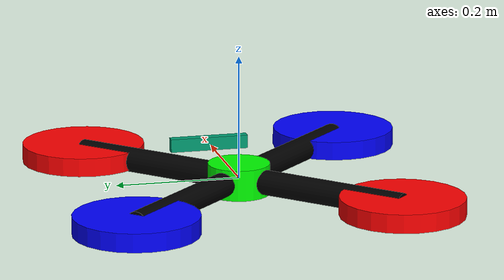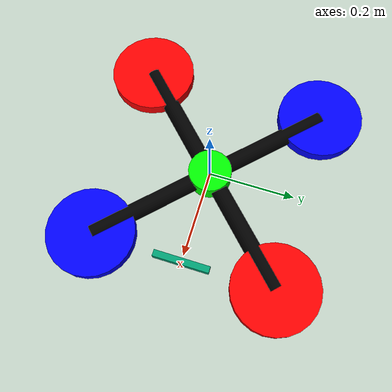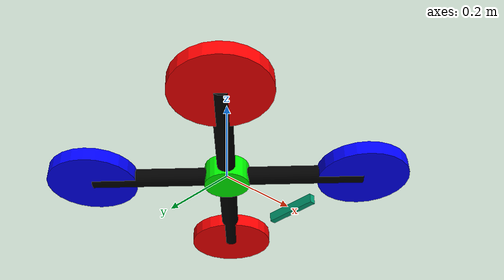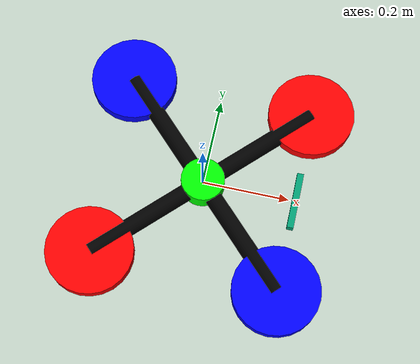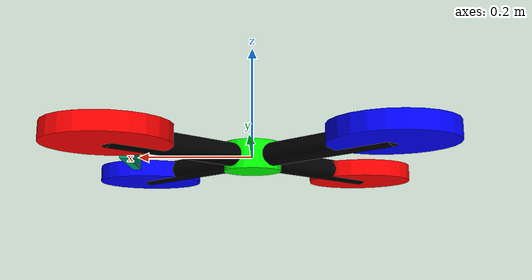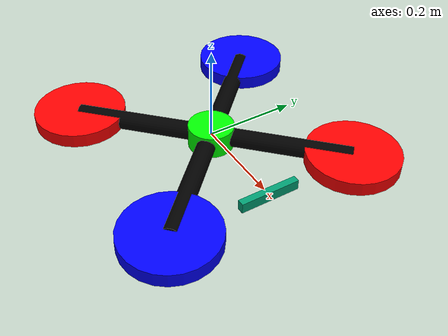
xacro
<?xml version="1.0"?>
<robot name="simple_quad" xmlns:xacro="http://ros.org/wiki/xacro">

  <xacro:property name="namespace"  value="simple_quad"/>

  <!-- Define robot constants -->
  <xacro:property name="arm_length"  value="0.30"/>
  <xacro:property name="arm_radius"  value="0.02"/>
  <xacro:property name="prop_radius" value="0.10"/>
  <xacro:property name="base_radius" value="0.05"/>
  <xacro:property name="base_height" value="0.05"/>

  <!-- Define intertial property macros  -->
  <xacro:macro name="box_inertia" params="m w h d">
    <inertial>
      <origin xyz="0 0 0" rpy="${pi/2} 0 ${pi/2}"/>
      <mass value="${m}"/>
      <inertia ixx="${(m/12) * (h*h + d*d)}" ixy="0.0" ixz="0.0" iyy="${(m/12) * (w*w + d*d)}" iyz="0.0" izz="${(m/12) * (w*w + h*h)}"/>
    </inertial>
  </xacro:macro>

  <xacro:macro name="cylinder_inertia" params="m r h">
    <inertial>
      <origin xyz="0 0 0" rpy="${pi/2} 0 0" />
      <mass value="${m}"/>
      <inertia ixx="${(m/12) * (3*r*r + h*h)}" ixy = "0" ixz = "0" iyy="${(m/12) * (3*r*r + h*h)}" iyz = "0" izz="${(m/2) * (r*r)}"/>
    </inertial>
  </xacro:macro>

  <xacro:macro name="sphere_inertia" params="m r">
    <inertial>
      <mass value="${m}"/>
      <inertia ixx="${(2/5) * m * (r*r)}" ixy="0.0" ixz="0.0" iyy="${(2/5) * m * (r*r)}" iyz="0.0" izz="${(2/5) * m * (r*r)}"/>
    </inertial>
  </xacro:macro>

  <!-- Robot Base -->
  <link name="base_link">
      <visual>
        <geometry>
          <cylinder radius="${base_radius}" length="${base_height}"/>
        </geometry>
        <material name="base">
          <color rgba="0 1.0 0.0 1"/>
        </material>
      </visual>

      <collision>
        <origin xyz="0 0 0" rpy="0 0 0"/>
        <geometry>
          <cylinder radius="${base_radius}" length="${base_height}"/>
        </geometry>
      </collision>

      <xacro:cylinder_inertia m="0.1" r="${base_radius}" h="${base_height}"/>
  </link>

  <!-- gravity (added later, not in original model) -->
  <gazebo reference="base_link">
    <gravity>true</gravity>
  </gazebo>

  <!-- Arms -->
  <xacro:macro name="arm" params="prefix color arm_angle">

  <joint name="${prefix}_joint" type="fixed">
    <parent link="base_link"/>
    <child link="${prefix}_link"/>
    <origin xyz="0.0 0.0 0.0" rpy="0 0 ${arm_angle+pi/4}"/>
  </joint>

    <link name="${prefix}_link">
      <visual>
        <origin xyz="${arm_length/2} 0 0" rpy="${pi/2} 0 ${pi/2}"/>
        <geometry>
            <cylinder radius="${arm_radius}" length="${arm_length}"/>
        </geometry>
	<material name="black">
	   <color rgba="0 0 0 1"/>
        </material>
      </visual>

      <collision>
        <origin xyz="${arm_length/2} 0 0" rpy="${pi/2} 0 ${pi/2}"/>
        <geometry>
          <cylinder radius="${arm_radius}" length="${arm_length}"/>
        </geometry>
      </collision>

      <xacro:cylinder_inertia m="0.01" r="${arm_radius}" h="${arm_length}"/>
    </link>

  <joint name="${prefix}_motor_joint" type="fixed">
    <parent link="${prefix}_link"/>
    <child link="${prefix}_motor_link"/>
    <origin xyz="${arm_length} 0.0 0.0" rpy="0 0 0"/>
  </joint>

    <link name="${prefix}_motor_link">
      <visual>
        <origin xyz="0 0 0" rpy="0 0 0"/>
        <geometry>
            <cylinder radius="${prop_radius}" length="0.03"/>
        </geometry>
	<material name="${prefix}_color">
           <color rgba="${color}"/>
        </material>
      </visual>
      <collision>
        <origin xyz="0 0 0" rpy="0 0 0"/>
        <geometry>
          <cylinder radius="${prop_radius}" length="0.03"/>
        </geometry>
      </collision>

      <xacro:cylinder_inertia m="0.01" r="${prop_radius}" h="0.03"/>
    </link>

  </xacro:macro>

  <xacro:arm prefix="arm1" color="1.0 0.0 0.0 1.0" arm_angle="0" />
  <xacro:arm prefix="arm3" color="0.0 0.0 1.0 1.0" arm_angle="${pi/2}" />
  <xacro:arm prefix="arm4" color="1.0 0.0 0.0 1.0" arm_angle="${pi}" />
  <xacro:arm prefix="arm2" color="0.0 0.0 1.0 1.0" arm_angle="${3*pi/2}" />

<link name="imu_link">
  <visual>
    <geometry>
      <box size="0.01 0.01 0.01"/>
    </geometry>
  </visual>

  <collision>
    <geometry>
      <box size="0.01 0.01 0.01"/>
    </geometry>
  </collision>

  <xacro:box_inertia m="0.01" w="0.01" d="0.01" h="0.01"/>
</link>

<joint name="imu_joint" type="fixed">
  <parent link="base_link"/>
  <child link="imu_link"/>
  <origin xyz="0 0 0.01"/>
</joint>

<gazebo reference="imu_link">
<sensor name="imu_sensor" type="imu">
  <plugin filename="libgazebo_ros_imu_sensor.so" name="imu_plugin">
    <ros>
      <namespace>${namespace}</namespace>
      <remapping>~/out:=imu</remapping>
    </ros>
    <initial_orientation_as_reference>false</initial_orientation_as_reference>
  </plugin>
  <always_on>true</always_on>
  <update_rate>100</update_rate>
  <visualize>true</visualize>
  <imu>
    <angular_velocity>
      <x>
        <noise type="gaussian">
          <mean>0.0</mean>
          <stddev>2e-4</stddev>
          <bias_mean>0.0000075</bias_mean>
          <bias_stddev>0.0000008</bias_stddev>
        </noise>
      </x>
      <y>
        <noise type="gaussian">
          <mean>0.0</mean>
          <stddev>2e-4</stddev>
          <bias_mean>0.0000075</bias_mean>
          <bias_stddev>0.0000008</bias_stddev>
        </noise>
      </y>
      <z>
        <noise type="gaussian">
          <mean>0.0</mean>
          <stddev>2e-4</stddev>
          <bias_mean>0.0000075</bias_mean>
          <bias_stddev>0.0000008</bias_stddev>
        </noise>
      </z>
    </angular_velocity>
    <linear_acceleration>
      <x>
        <noise type="gaussian">
          <mean>0.0</mean>
          <stddev>1.7e-2</stddev>
          <bias_mean>0.1</bias_mean>
          <bias_stddev>0.001</bias_stddev>
        </noise>
      </x>
      <y>
        <noise type="gaussian">
          <mean>0.0</mean>
          <stddev>1.7e-2</stddev>
          <bias_mean>0.1</bias_mean>
          <bias_stddev>0.001</bias_stddev>
        </noise>
      </y>
      <z>
        <noise type="gaussian">
          <mean>0.0</mean>
          <stddev>1.7e-2</stddev>
          <bias_mean>0.1</bias_mean>
          <bias_stddev>0.001</bias_stddev>
        </noise>
      </z>
    </linear_acceleration>
  </imu>
</sensor>
</gazebo>

<link name="camera_link">
  <visual>
    <origin xyz="0 0 0" rpy="0 0 0"/>
    <geometry>
      <box size="0.015 0.130 0.022"/>
    </geometry>
  </visual>

  <collision>
    <origin xyz="0 0 0" rpy="0 0 0"/>
    <geometry>
      <box size="0.015 0.130 0.022"/>
    </geometry>
  </collision>

  <inertial>
    <origin xyz="0 0 0" rpy="0 0 0"/>
    <mass value="0.035"/>
    <inertia ixx="0.001"  ixy="0"  ixz="0" iyy="0.001" iyz="0" izz="0.001" />
  </inertial>
</link>

<joint name="camera_joint" type="fixed">
  <parent link="base_link"/>
  <child link="camera_link"/>
  <origin xyz="0.215 0 0.0" rpy="0 0 0"/>
</joint>

<link name="camera_depth_frame"/>

<joint name="camera_depth_joint" type="fixed">
  <origin xyz="0 0 0" rpy="${-pi/2} 0 ${-pi/2}"/>
  <parent link="camera_link"/>
  <child link="camera_depth_frame"/>
</joint>

<gazebo reference="camera_link">
  <sensor name="depth_camera" type="depth">
    <visualize>true</visualize>
    <update_rate>30.0</update_rate>
    <camera name="camera">
      <horizontal_fov>1.047198</horizontal_fov>
      <image>
        <width>640</width>
        <height>480</height>
        <format>R8G8B8</format>
      </image>
    </camera>
    <plugin name="depth_camera_controller" filename="libgazebo_ros_camera.so">
      <ros>
        <namespace>${namespace}</namespace>
      </ros>
      <baseline>0.2</baseline>
      <alwaysOn>true</alwaysOn>
      <updateRate>0.0</updateRate>
      <frame_name>camera_depth_frame</frame_name>
      <pointCloudCutoff>0.5</pointCloudCutoff>
      <pointCloudCutoffMax>3.0</pointCloudCutoffMax>
      <distortionK1>0</distortionK1>
      <distortionK2>0</distortionK2>
      <distortionK3>0</distortionK3>
      <distortionT1>0</distortionT1>
      <distortionT2>0</distortionT2>
      <CxPrime>0</CxPrime>
      <Cx>0</Cx>
      <Cy>0</Cy>
      <focalLength>0</focalLength>
      <hackBaseline>0</hackBaseline>
      <min_depth>0.05</min_depth>
      <max_depth>20</max_depth>

    </plugin>
  </sensor>
</gazebo>

<gazebo>
  <plugin name='gazebo_ros_simple_quad' filename='libgazebo_ros_simple_quad.so'>
    <ros>
      <namespace>${namespace}</namespace>
    </ros>

    <!-- This is required -->
    <link_name>base_link</link_name>

    <!-- Defaults to world -->
    <!-- The plugin expects TF `frame_id` + "_desired" -->
    <!-- $ ros2 run tf2_ros static_transform_publisher 0 0 0 0 0.5 0 1 world base_link_desired -->
    <frame_id>base_link</frame_id>

    <!-- Set force and torque gains -->
    <ka>100</ka>
    <kl>100</kl>

    <!-- Max acceleration -->
    <max_acc>10</max_acc>

    <fake_pitch_roll>true</fake_pitch_roll>

    <!-- Odometry output -->
    <update_rate>50</update_rate>
    <publish_odom>true</publish_odom>
    <publish_odom_tf>true</publish_odom_tf>

    <cmd_vel_topic>/cmd_vel</cmd_vel_topic>
    <cmd_pos_topic>/cmd_pos</cmd_pos_topic>

    <odometry_topic>odom</odometry_topic>
    <odometry_frame>odom</odometry_frame>
    <robot_base_frame>base_link</robot_base_frame>

    <bias_x>0.00001</bias_x>
    <bias_y>0.00001</bias_y>
    <bias_z>0.00001</bias_z>
    <covariance_x>0.01</covariance_x>
    <covariance_y>0.01</covariance_y>
    <covariance_z>0.01</covariance_z>
    <bias_vx>0.00001</bias_vx>
    <bias_vy>0.00001</bias_vy>
    <bias_vz>0.00001</bias_vz>
    <covariance_vx>0.1</covariance_vx>
    <covariance_vy>0.1</covariance_vy>
    <covariance_vz>0.1</covariance_vz>
    <bias_roll>0.001</bias_roll>
    <bias_pitch>0.001</bias_pitch>
    <bias_yaw>0.001</bias_yaw>
    <covariance_roll>0.01</covariance_roll>
    <covariance_pitch>0.01</covariance_pitch>
    <covariance_yaw>0.01</covariance_yaw>
    <bias_vroll>0.001</bias_vroll>
    <bias_vpitch>0.001</bias_vpitch>
    <bias_vyaw>0.001</bias_vyaw>
    <covariance_vroll>0.01</covariance_vroll>
    <covariance_vpitch>0.01</covariance_vpitch>
    <covariance_vyaw>0.01</covariance_vyaw>

  </plugin>
</gazebo>

</robot>
